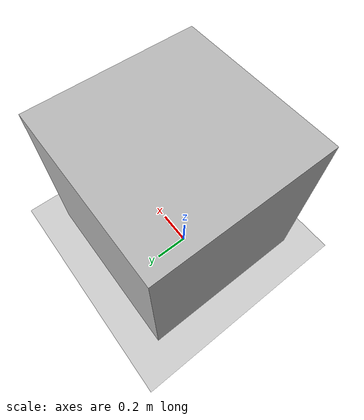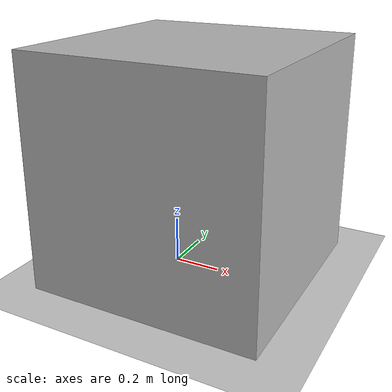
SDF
<?xml version="1.0"?>
<sdf version="1.4">
  <world name="default">

    <!-- Ground Plane -->
    <include>
      <uri>model://ground_plane</uri>
    </include>

    <include>
      <uri>model://sun</uri>
    </include>

    <model name="box">
      <pose>0.1 0 0.5 0 0 0</pose>

      <link name="link">
        <collision name="collision">

          <geometry>
            <box>
              <size>1 1 1</size>
            </box>
          </geometry>
          <surface>
            <bounce>
              <restitution_coefficient>0</restitution_coefficient>
              <threshold>0</threshold>
            </bounce>
            <friction>
              <ode>
                <mu>100000</mu>
                <mu2>-1000</mu2>
              </ode>
            </friction>
            <contact>
              <ode>
                <max_vel>10</max_vel>
              </ode>
            </contact>
          </surface>

        </collision>

        <visual name="visual">
          <geometry>
            <box>
              <size>1 1 1</size>
            </box>
          </geometry>
        </visual>

        <sensor name='my_contact' type='contact'>
          <contact>
            <collision>box_collision</collision>
          </contact>
        </sensor>

      </link>

      <plugin name="model_hop3" filename="libmodel_hop3.so"/>
      <plugin name="contact" filename="libcontact.so"/>
    </model>

    <physics type="ode">
      <gravity>0.0 0.0 -0.00098</gravity>
      <max_step_size>0.001</max_step_size>
      <real_time_factor>3</real_time_factor>
      <real_time_update_rate>0.000</real_time_update_rate>
      <max_contacts>1</max_contacts>
      <ode>
        <solver>
          <type>quick</type>
          <iters>50</iters>
          <sor>1.4</sor>
        </solver>
        <constraints>
          <cfm>0</cfm>
          <erp>0.01</erp>
          <contact_max_correcting_vel>0.0</contact_max_correcting_vel>
          <contact_surface_layer>0.000</contact_surface_layer>
        </constraints>
      </ode>
    </physics>

  </world>
</sdf>
